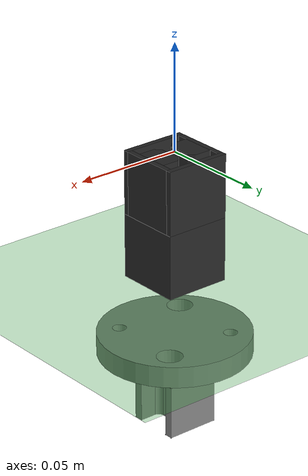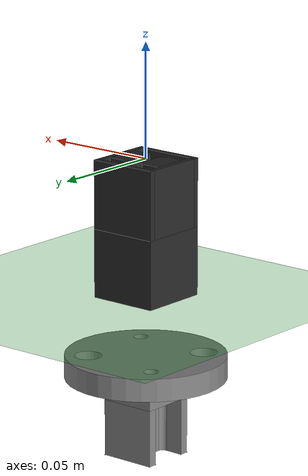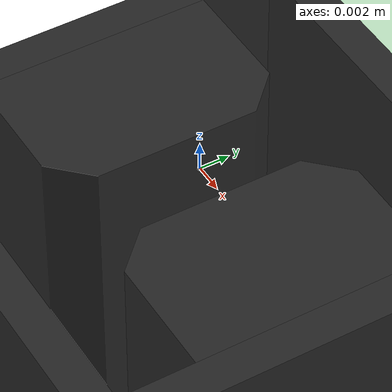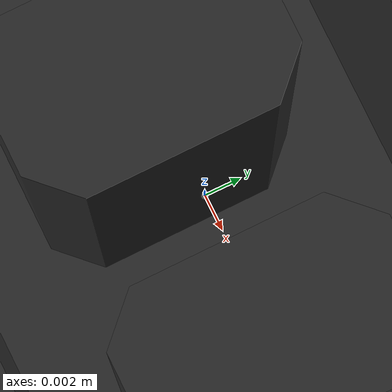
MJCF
<mujoco>
    <option timestep=".001">
        <flag energy="enable" contact="enable"  override="enable"/>
    </option>

    <default>
        <default class="hole_geom">
            <geom xyaxes="1 0 0 0 1 0" rgba="0.15 0.15 0.15 1"/>
        </default>
        <site size="0.0002" />
        <geom friction="5" />
    </default>

    <visual>
        <global offwidth="960" offheight="720"/>
    </visual>

    <asset>

        <mesh name="peg1" file="../asset/I_peg/I_peg_decomposition/Body1.stl" />
        <mesh name="peg2" file="../asset/I_peg/I_peg_decomposition/Body6.stl" />
        <mesh name="peg3" file="../asset/I_peg/I_peg_decomposition/Body7.stl" />
        <mesh name="peg4" file="../asset/I_peg/I_peg_decomposition/Body8.stl" />
        <mesh name="peg5" file="../asset/I_peg/I_peg_decomposition/Body9.stl" />
        <mesh name="peg6" file="../asset/I_peg/I_peg_decomposition/Body10.stl" />
        <mesh name="peg7" file="../asset/I_peg/I_peg_decomposition/Body11.stl" />
        <mesh name="peg8" file="../asset/I_peg/I_peg_decomposition/Body12.stl" />
        <mesh name="peg9" file="../asset/I_peg/I_peg_decomposition/Body13.stl" />

        <mesh name="hole1" file="../asset/I_peg/I_hole_decomposition/Body1.stl" />
        <mesh name="hole2" file="../asset/I_peg/I_hole_decomposition/Body10.stl" />
        <mesh name="hole3" file="../asset/I_peg/I_hole_decomposition/Body11.stl" />
        <mesh name="hole4" file="../asset/I_peg/I_hole_decomposition/Body12.stl" />
        <mesh name="hole5" file="../asset/I_peg/I_hole_decomposition/Body13.stl" />
        <mesh name="hole6" file="../asset/I_peg/I_hole_decomposition/Body17.stl" />
        <mesh name="hole7" file="../asset/I_peg/I_hole_decomposition/Body19.stl" />

        <texture name="grid" type="2d" file="../asset/green_tex.png" />
        <material name="grid" texture="grid" texrepeat="6 6" texuniform="true" reflectance="0.0" />
    </asset>

    <worldbody>
        <site name="world" pos="0 0 0" size="0.0001" />
        <light name="top-light" pos="0.1 -.2 0.8" mode="targetbodycom" target="peg"
            castshadow="false" ambient=".4 .4 .4" />

        <geom name="ground" type="plane" pos="0 0 -0.06" size="1 1 0.01" material="grid"
            friction=".1" />

        <body name="hole" pos="0 0 -0.03">
            <inertial pos="0 0 0" mass="0.1" diaginertia="0.1 0.1 0.1" />

            <geom type="mesh" mesh="hole1" class="hole_geom"/>
            <geom type="mesh" mesh="hole2" class="hole_geom"/>
            <geom type="mesh" mesh="hole3" class="hole_geom"/>
            <geom type="mesh" mesh="hole4" class="hole_geom"/>
            <geom type="mesh" mesh="hole5" class="hole_geom"/>
            <geom type="mesh" mesh="hole6" class="hole_geom"/>
            <geom type="mesh" mesh="hole7" class="hole_geom"/>
        </body>

        <body name="flage" pos="0 0 0.0">

            <site name="peg/external/motor" pos="0 0 0.0" />

            <camera name="track" mode="track" pos="-0.03 0.0575 -0.098" euler="-60 -30 180" fovy="69.4"/>

            <joint name="trans_x" type="slide" axis="1 0 0" limited="false"/>
            <joint name="trans_y" type="slide" axis="0 1 0" limited="false"/>
            <joint name="trans_z" type="slide" axis="0 0 1" limited="false"/>
            <joint name="hinge_x" type="hinge" axis="1 0 0" limited="false"/>
            <joint name="hinge_y" type="hinge" axis="0 1 0" limited="false"/>
            <joint name="hinge_z" type="hinge" axis="0 0 1" limited="false"/>

            <body name="peg" pos="0 0 -0.0958">

                <inertial pos="-0.00665 0.00795 0.08289" mass="1.41" diaginertia="0.1 0.1 0.1" />

                <site name="peg/origin" pos="0 0 0" />
                <site name="peg/peg" pos="0 0 -0.01" />
                <site name="peg/tip" pos="0 0 -0.035" />
                <site name="peg/peg_bottom_1" pos="0.0125 0.0085 -0.035" />
                <site name="peg/peg_bottom_2" pos="0.0125 0.0125 -0.035" />
                <site name="peg/peg_bottom_3" pos="-0.0125 0.0125 -0.035" />
                <site name="peg/peg_bottom_4" pos="-0.0125 0.0085 -0.035" />
                <site name="peg/peg_bottom_5" pos="-0.0125 -0.0085 -0.035" />
                <site name="peg/peg_bottom_6" pos="-0.0125 -0.0125 -0.035" />
                <site name="peg/peg_bottom_7" pos="0.0125 -0.0125 -0.035" />
                <site name="peg/peg_bottom_8" pos="0.0125 -0.0085 -0.035" />

                <geom type="mesh" mesh="peg1" xyaxes="1 0 0 0 -1 0"/>
                <geom type="mesh" mesh="peg2" xyaxes="1 0 0 0 -1 0"/>
                <geom type="mesh" mesh="peg3" xyaxes="1 0 0 0 -1 0"/>
                <geom type="mesh" mesh="peg4" xyaxes="1 0 0 0 -1 0"/>
                <geom type="mesh" mesh="peg5" xyaxes="1 0 0 0 -1 0"/>
                <geom type="mesh" mesh="peg6" xyaxes="1 0 0 0 -1 0"/>
                <geom type="mesh" mesh="peg7" xyaxes="1 0 0 0 -1 0"/>
                <geom type="mesh" mesh="peg8" xyaxes="1 0 0 0 -1 0"/>
                <geom type="mesh" mesh="peg9" xyaxes="1 0 0 0 -1 0"/>
            </body>
        </body>

    </worldbody>

    <custom>
        <numeric name="sites_on_peg_bottom" data="8"/>
    </custom>

    <actuator>
        <position name="x" forcelimited="true" forcerange="-20 20" joint="trans_x" kp="3000" kv="50" />
        <position name="y" forcelimited="true" forcerange="-20 20" joint="trans_y" kp="3000" kv="50" />
        <position name="z" forcelimited="true" forcerange="-20 20" joint="trans_z" kp="3000" kv="50" />
        <position name="rx" forcelimited="true" forcerange="-5 5" joint="hinge_x" kp="50" kv="5" />
        <position name="ry" forcelimited="true" forcerange="-5 5" joint="hinge_y" kp="50" kv="5"/>
        <position name="rz" forcelimited="true" forcerange="-5 5" joint="hinge_z" kp="50" kv="5"/>
    </actuator>

    <sensor>
        <force name="force_sensor" site="peg/external/motor" />
        <torque name="torque_sensor" site="peg/external/motor" />
        <framepos name="peg_pos" objtype="site" objname="peg/peg"/>
        <framequat name="peg_quat" objtype="site" objname="peg/peg"/>
    </sensor>
</mujoco>
